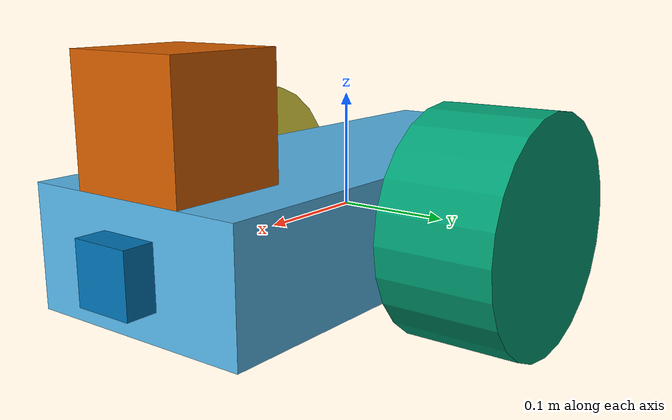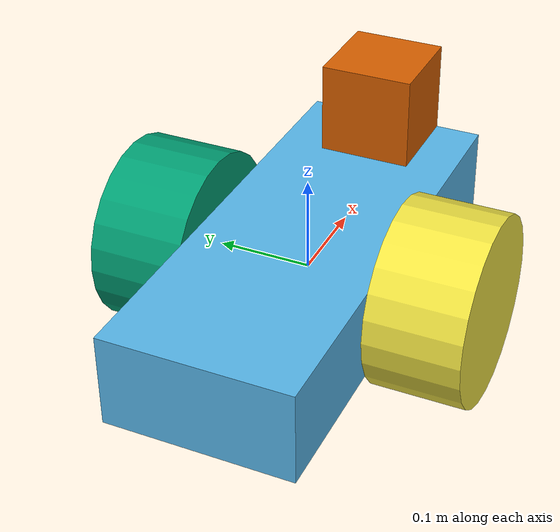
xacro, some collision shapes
<?xml version='1.0'?>

<robot name="my_robot" xmlns:xacro="http://www.ros.org/wiki/xacro">

  <xacro:include filename="$(find my_robot)/urdf/my_robot.gazebo"/>

  <link name="robot_footprint"></link>

  <joint name="robot_footprint_joint" type="fixed">
    <origin xyz="0 0 0" rpy="0 0 0" />
    <parent link="robot_footprint"/>
    <child link="chassis" />
  </joint>

  <joint type="continuous" name="left_wheel_hinge">
    <origin xyz=".0 0.15 .0" rpy="0 0 0"/>
    <child link="left_wheel"/>
    <parent link="chassis"/>
    <axis xyz="0 1 0" rpy="0 0 0"/>
    <limit effort="10000" velocity="1000"/>
    <dynamics damping="1.0" friction="1.0"/>
  </joint>

  <joint type="continuous" name="right_wheel_hinge">
    <origin xyz=".0 -0.15 .0" rpy="0 0 0"/>
    <child link="right_wheel"/>
    <parent link="chassis"/>
    <axis xyz="0 1 0" rpy="0 0 0"/>
    <limit effort="10000" velocity="1000"/>
    <dynamics damping="1.0" friction="1.0"/>
  </joint>

  <joint type="fixed" name="camera_joint">
    <origin xyz=".25 0 0" rpy="0 0 0"/>
    <child link="camera"/>
    <parent link="chassis"/>
    <axis xyz="0 1 0" rpy="0 0 0"/>
  </joint>

  <joint type="fixed" name="hokuyo_joint">
    <origin xyz=".2 0 .1" rpy="0 0 0"/>
    <child link="hokuyo"/>
    <parent link="chassis"/>
    <axis xyz="0 1 0" rpy="0 0 0"/>
  </joint>

  <link name='chassis'>
    <pose>0 0 0.1 0 0 0</pose>

    <inertial>
      <mass value="35.0"/>
      <origin xyz="0 0 0" rpy=" 0 0 0"/>
      <inertia
          ixx="0.1" ixy="0" ixz="0"
          iyy="0.1" iyz="0"
          izz="0.1"
      />
    </inertial>

    <collision name='collision'>
      <origin xyz="0 0 0" rpy=" 0 0 0"/>
      <geometry>
        <box size=".5 .2 .1"/>
      </geometry>
    </collision>

    <visual name='chassis_visual'>
      <origin xyz="0 0 0" rpy=" 0 0 0"/>
      <geometry>
        <box size=".5 .2 .1"/>
      </geometry>
    </visual>

    <collision name='back_caster_collision'>
      <origin xyz="-0.15 0 -0.05" rpy=" 0 0 0"/>
      <geometry>
        <sphere radius="0.0499"/>
      </geometry>
    </collision>

    <visual name='back_caster_visual'>
      <origin xyz="-0.15 0 -0.05" rpy=" 0 0 0"/>
      <geometry>
        <sphere radius="0.05"/>
      </geometry>
    </visual>

    <collision name='front_caster_collision'>
      <origin xyz="0.15 0 -0.05" rpy=" 0 0 0"/>
      <geometry>
        <sphere radius="0.0499"/>
      </geometry>
    </collision>

    <visual name='front_caster_visual'>
      <origin xyz="0.15 0 -0.05" rpy=" 0 0 0"/>
      <geometry>
        <sphere radius="0.05"/>
      </geometry>
    </visual>

  </link>

 <link name= 'left_wheel'>

    <inertial>
      <mass value="5.0"/>
      <origin xyz="0 0 0" rpy=" 0 1.5707 1.5707"/>
      <inertia
          ixx="0.1" ixy="0" ixz="0"
          iyy="0.1" iyz="0"
          izz="0.1"
      />
    </inertial>

    <collision name='collision'>
      <geometry>
        <cylinder radius=".1" length=".1"/>
      </geometry>
      <origin xyz="0 0 0" rpy="0 1.5707 1.5707"/>
    </collision>

    <visual name='visual'>
      <geometry>
        <cylinder radius=".1" length=".1"/>
      </geometry>
      <origin xyz="0 0 0" rpy="0 1.5707 1.5707"/>
    </visual>

  </link>

  <link name= 'right_wheel'>

    <inertial>
      <mass value="5.0"/>
      <origin xyz="0 0 0" rpy=" 0 1.5707 1.5707"/>
      <inertia
          ixx="0.1" ixy="0" ixz="0"
          iyy="0.1" iyz="0"
          izz="0.1"
      />
    </inertial>

    <collision name='collision'>
      <geometry>
        <cylinder radius=".1" length=".1"/>
      </geometry>
      <origin xyz="0 0 0" rpy="0 1.5707 1.5707"/>
    </collision>

    <visual name='visual'>
      <geometry>
        <cylinder radius=".1" length=".1"/>
      </geometry>
      <origin xyz="0 0 0" rpy="0 1.5707 1.5707"/>
    </visual>
  </link>

 <link name= 'camera'>

    <inertial>
      <mass value=".1"/>
      <origin xyz="0 0 0" rpy=" 0 0 0"/>
      <inertia
          ixx="1e-6" ixy="0" ixz="0"
          iyy="1e-6" iyz="0"
          izz="1e-6"
      />
    </inertial>

    <collision name='collision'>
      <geometry>
        <box size=".05 .05 .05"/>
      </geometry>
      <box_inertia m=".1" x=".05" y=".05" z=".05"/>
      <origin xyz="0 0 0" rpy=" 0 0 0"/>
    </collision>

    <visual name='visual'>
      <geometry>
        <box size=".05 .05 .05"/>
      </geometry>
      <box_inertia m=".1" x=".05" y=".05" z=".05"/>
      <origin xyz="0 0 0" rpy=" 0 0 0"/>
    </visual>
  </link>

  <link name= 'hokuyo'>

    <inertial>
      <mass value="1e-5"/>
      <origin xyz="0 0 0" rpy=" 0 0 0"/>
      <inertia
          ixx="1e-6" ixy="0" ixz="0"
          iyy="1e-6" iyz="0"
          izz="1e-6"
      />
    </inertial>

    <collision name='collision'>
      <geometry>
        <box size=".1 .1 .1"/>
      </geometry>
      <origin xyz="0 0 0" rpy=" 0 0 0"/>
    </collision>

    <visual name='visual'>
      <geometry>
        <mesh filename="package://my_robot/meshes/hokuyo.dae"/>
      </geometry>
      <origin xyz="0 0 0" rpy=" 0 0 0"/>
    </visual>
  </link>

</robot>
